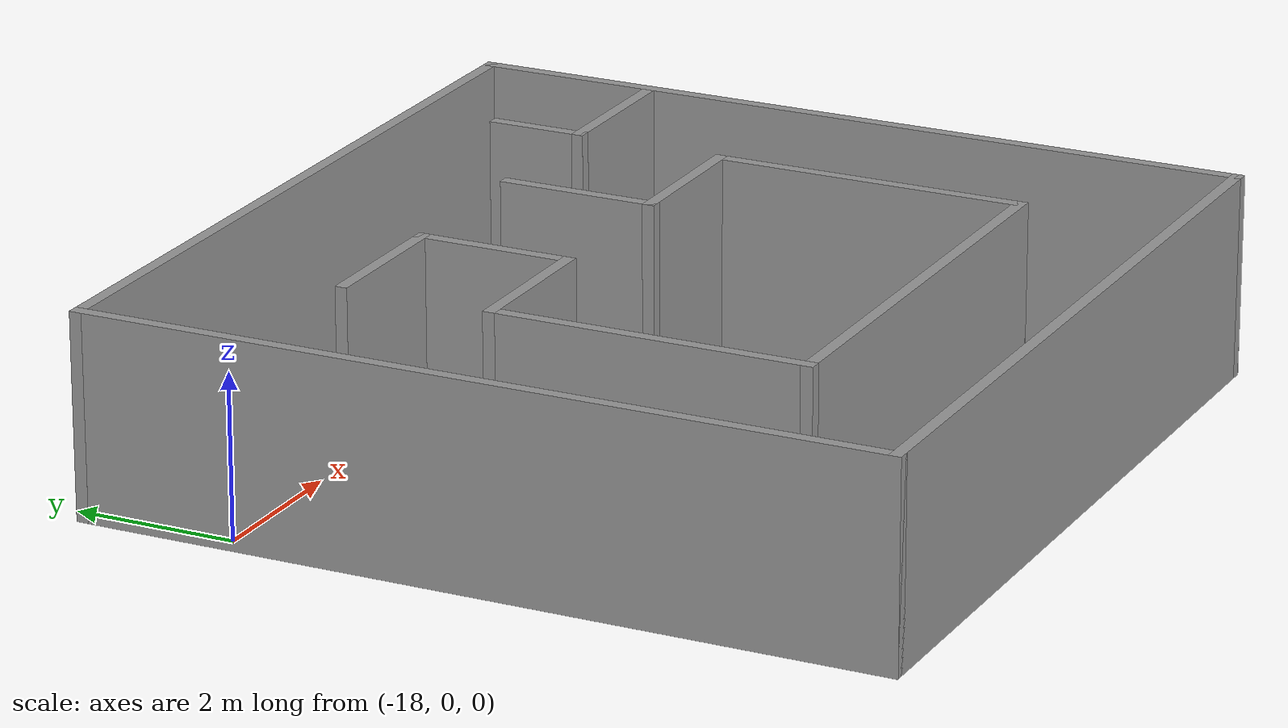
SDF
<?xml version='1.0'?>
<sdf version='1.6'>
  <model name='labirent'>
    <pose frame=''>-13.2665 -3.14467 0 0 -0 0</pose>
    <link name='Wall_0'>
      <collision name='Wall_0_Collision'>
        <geometry>
          <box>
            <size>10 0.15 2.5</size>
          </box>
        </geometry>
        <pose frame=''>0 0 1.25 0 -0 0</pose>
      </collision>
      <visual name='Wall_0_Visual'>
        <pose frame=''>0 0 1.25 0 -0 0</pose>
        <geometry>
          <box>
            <size>10 0.15 2.5</size>
          </box>
        </geometry>
        <material>
          <script>
            <uri>file://media/materials/scripts/gazebo.material</uri>
            <name>Gazebo/Grey</name>
          </script>
          <ambient>1 1 1 1</ambient>
        </material>
        <meta>
          <layer>0</layer>
        </meta>
      </visual>
      <pose frame=''>-0 -4.925 0 0 -0 0</pose>
    </link>
    <link name='Wall_1'>
      <collision name='Wall_1_Collision'>
        <geometry>
          <box>
            <size>10 0.15 2.5</size>
          </box>
        </geometry>
        <pose frame=''>0 0 1.25 0 -0 0</pose>
      </collision>
      <visual name='Wall_1_Visual'>
        <pose frame=''>0 0 1.25 0 -0 0</pose>
        <geometry>
          <box>
            <size>10 0.15 2.5</size>
          </box>
        </geometry>
        <material>
          <script>
            <uri>file://media/materials/scripts/gazebo.material</uri>
            <name>Gazebo/Grey</name>
          </script>
          <ambient>1 1 1 1</ambient>
        </material>
        <meta>
          <layer>0</layer>
        </meta>
      </visual>
      <pose frame=''>4.925 0 0 0 -0 1.5708</pose>
    </link>
    <link name='Wall_11'>
      <collision name='Wall_11_Collision'>
        <geometry>
          <box>
            <size>6 0.15 2.5</size>
          </box>
        </geometry>
        <pose frame=''>0 0 1.25 0 -0 0</pose>
      </collision>
      <visual name='Wall_11_Visual'>
        <pose frame=''>0 0 1.25 0 -0 0</pose>
        <geometry>
          <box>
            <size>6 0.15 2.5</size>
          </box>
        </geometry>
        <material>
          <script>
            <uri>file://media/materials/scripts/gazebo.material</uri>
            <name>Gazebo/Grey</name>
          </script>
          <ambient>1 1 1 1</ambient>
        </material>
        <meta>
          <layer>0</layer>
        </meta>
      </visual>
      <pose frame=''>-0.011635 -3.01382 0 0 -0 0</pose>
    </link>
    <link name='Wall_13'>
      <collision name='Wall_13_Collision'>
        <geometry>
          <box>
            <size>4 0.15 2.5</size>
          </box>
        </geometry>
        <pose frame=''>0 0 1.25 0 -0 0</pose>
      </collision>
      <visual name='Wall_13_Visual'>
        <pose frame=''>0 0 1.25 0 -0 0</pose>
        <geometry>
          <box>
            <size>4 0.15 2.5</size>
          </box>
        </geometry>
        <material>
          <script>
            <uri>file://media/materials/scripts/gazebo.material</uri>
            <name>Gazebo/Grey</name>
          </script>
          <ambient>1 1 1 1</ambient>
        </material>
        <meta>
          <layer>0</layer>
        </meta>
      </visual>
      <pose frame=''>-2.93663 -1.08882 0 0 -0 1.5708</pose>
    </link>
    <link name='Wall_15'>
      <collision name='Wall_15_Collision'>
        <geometry>
          <box>
            <size>4 0.15 2.5</size>
          </box>
        </geometry>
        <pose frame=''>0 0 1.25 0 -0 0</pose>
      </collision>
      <visual name='Wall_15_Visual'>
        <pose frame=''>0 0 1.25 0 -0 0</pose>
        <geometry>
          <box>
            <size>4 0.15 2.5</size>
          </box>
        </geometry>
        <material>
          <script>
            <uri>file://media/materials/scripts/gazebo.material</uri>
            <name>Gazebo/Grey</name>
          </script>
          <ambient>1 1 1 1</ambient>
        </material>
        <meta>
          <layer>0</layer>
        </meta>
      </visual>
      <pose frame=''>2.91337 -1.08882 0 0 -0 1.5708</pose>
    </link>
    <link name='Wall_17'>
      <collision name='Wall_17_Collision'>
        <geometry>
          <box>
            <size>2 0.15 2.5</size>
          </box>
        </geometry>
        <pose frame=''>0 0 1.25 0 -0 0</pose>
      </collision>
      <visual name='Wall_17_Visual'>
        <pose frame=''>0 0 1.25 0 -0 0</pose>
        <geometry>
          <box>
            <size>2 0.15 2.5</size>
          </box>
        </geometry>
        <material>
          <script>
            <uri>file://media/materials/scripts/gazebo.material</uri>
            <name>Gazebo/Grey</name>
          </script>
          <ambient>1 1 1 1</ambient>
        </material>
        <meta>
          <layer>0</layer>
        </meta>
      </visual>
      <pose frame=''>-2.01164 0.83618 0 0 -0 0</pose>
    </link>
    <link name='Wall_19'>
      <collision name='Wall_19_Collision'>
        <geometry>
          <box>
            <size>2 0.15 2.5</size>
          </box>
        </geometry>
        <pose frame=''>0 0 1.25 0 -0 0</pose>
      </collision>
      <visual name='Wall_19_Visual'>
        <pose frame=''>0 0 1.25 0 -0 0</pose>
        <geometry>
          <box>
            <size>2 0.15 2.5</size>
          </box>
        </geometry>
        <material>
          <script>
            <uri>file://media/materials/scripts/gazebo.material</uri>
            <name>Gazebo/Grey</name>
          </script>
          <ambient>1 1 1 1</ambient>
        </material>
        <meta>
          <layer>0</layer>
        </meta>
      </visual>
      <pose frame=''>1.98836 0.83618 0 0 -0 3.14159</pose>
    </link>
    <link name='Wall_2'>
      <collision name='Wall_2_Collision'>
        <geometry>
          <box>
            <size>10 0.15 2.5</size>
          </box>
        </geometry>
        <pose frame=''>0 0 1.25 0 -0 0</pose>
      </collision>
      <visual name='Wall_2_Visual'>
        <pose frame=''>0 0 1.25 0 -0 0</pose>
        <geometry>
          <box>
            <size>10 0.15 2.5</size>
          </box>
        </geometry>
        <material>
          <script>
            <uri>file://media/materials/scripts/gazebo.material</uri>
            <name>Gazebo/Grey</name>
          </script>
          <ambient>1 1 1 1</ambient>
        </material>
        <meta>
          <layer>0</layer>
        </meta>
      </visual>
      <pose frame=''>-0 4.925 0 0 -0 3.14159</pose>
    </link>
    <link name='Wall_21'>
      <collision name='Wall_21_Collision'>
        <geometry>
          <box>
            <size>2 0.15 2.5</size>
          </box>
        </geometry>
        <pose frame=''>0 0 1.25 0 -0 0</pose>
      </collision>
      <visual name='Wall_21_Visual'>
        <pose frame=''>0 0 1.25 0 -0 0</pose>
        <geometry>
          <box>
            <size>2 0.15 2.5</size>
          </box>
        </geometry>
        <material>
          <script>
            <uri>file://media/materials/scripts/gazebo.material</uri>
            <name>Gazebo/Grey</name>
          </script>
          <ambient>1 1 1 1</ambient>
        </material>
        <meta>
          <layer>0</layer>
        </meta>
      </visual>
      <pose frame=''>-1.08664 1.76118 0 0 -0 1.5708</pose>
    </link>
    <link name='Wall_23'>
      <collision name='Wall_23_Collision'>
        <geometry>
          <box>
            <size>2 0.15 2.5</size>
          </box>
        </geometry>
        <pose frame=''>0 0 1.25 0 -0 0</pose>
      </collision>
      <visual name='Wall_23_Visual'>
        <pose frame=''>0 0 1.25 0 -0 0</pose>
        <geometry>
          <box>
            <size>2 0.15 2.5</size>
          </box>
        </geometry>
        <material>
          <script>
            <uri>file://media/materials/scripts/gazebo.material</uri>
            <name>Gazebo/Grey</name>
          </script>
          <ambient>1 1 1 1</ambient>
        </material>
        <meta>
          <layer>0</layer>
        </meta>
      </visual>
      <pose frame=''>1.06336 1.76118 0 0 -0 1.5708</pose>
    </link>
    <link name='Wall_25'>
      <collision name='Wall_25_Collision'>
        <geometry>
          <box>
            <size>2 0.15 2.5</size>
          </box>
        </geometry>
        <pose frame=''>0 0 1.25 0 -0 0</pose>
      </collision>
      <visual name='Wall_25_Visual'>
        <pose frame=''>0 0 1.25 0 -0 0</pose>
        <geometry>
          <box>
            <size>2 0.15 2.5</size>
          </box>
        </geometry>
        <material>
          <script>
            <uri>file://media/materials/scripts/gazebo.material</uri>
            <name>Gazebo/Grey</name>
          </script>
          <ambient>1 1 1 1</ambient>
        </material>
        <meta>
          <layer>0</layer>
        </meta>
      </visual>
      <pose frame=''>-2.01164 2.68618 0 0 -0 3.14159</pose>
    </link>
    <link name='Wall_27'>
      <collision name='Wall_27_Collision'>
        <geometry>
          <box>
            <size>2 0.15 2.5</size>
          </box>
        </geometry>
        <pose frame=''>0 0 1.25 0 -0 0</pose>
      </collision>
      <visual name='Wall_27_Visual'>
        <pose frame=''>0 0 1.25 0 -0 0</pose>
        <geometry>
          <box>
            <size>2 0.15 2.5</size>
          </box>
        </geometry>
        <material>
          <script>
            <uri>file://media/materials/scripts/gazebo.material</uri>
            <name>Gazebo/Grey</name>
          </script>
          <ambient>1 1 1 1</ambient>
        </material>
        <meta>
          <layer>0</layer>
        </meta>
      </visual>
      <pose frame=''>3.90828 2.72256 0 0 -0 3.14159</pose>
    </link>
    <link name='Wall_29'>
      <collision name='Wall_29_Collision'>
        <geometry>
          <box>
            <size>1.25 0.15 2.5</size>
          </box>
        </geometry>
        <pose frame=''>0 0 1.25 0 -0 0</pose>
      </collision>
      <visual name='Wall_29_Visual'>
        <pose frame=''>0 0 1.25 0 -0 0</pose>
        <geometry>
          <box>
            <size>1.25 0.15 2.5</size>
          </box>
        </geometry>
        <material>
          <script>
            <uri>file://media/materials/scripts/gazebo.material</uri>
            <name>Gazebo/Grey</name>
          </script>
          <ambient>1 1 1 1</ambient>
        </material>
        <meta>
          <layer>0</layer>
        </meta>
      </visual>
      <pose frame=''>2.98328 3.27256 0 0 -0 1.5708</pose>
    </link>
    <link name='Wall_3'>
      <collision name='Wall_3_Collision'>
        <geometry>
          <box>
            <size>10 0.15 2.5</size>
          </box>
        </geometry>
        <pose frame=''>0 0 1.25 0 -0 0</pose>
      </collision>
      <visual name='Wall_3_Visual'>
        <pose frame=''>0 0 1.25 0 -0 0</pose>
        <geometry>
          <box>
            <size>10 0.15 2.5</size>
          </box>
        </geometry>
        <material>
          <script>
            <uri>file://media/materials/scripts/gazebo.material</uri>
            <name>Gazebo/Grey</name>
          </script>
          <ambient>1 1 1 1</ambient>
        </material>
        <meta>
          <layer>0</layer>
        </meta>
      </visual>
      <pose frame=''>-4.925 0 0 0 -0 -1.5708</pose>
    </link>
    <static>1</static>
  </model>
</sdf>
